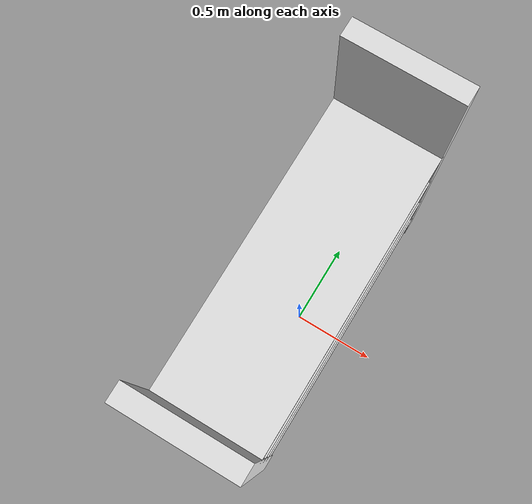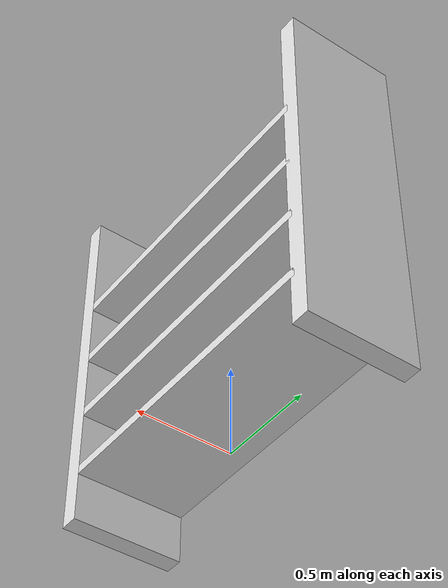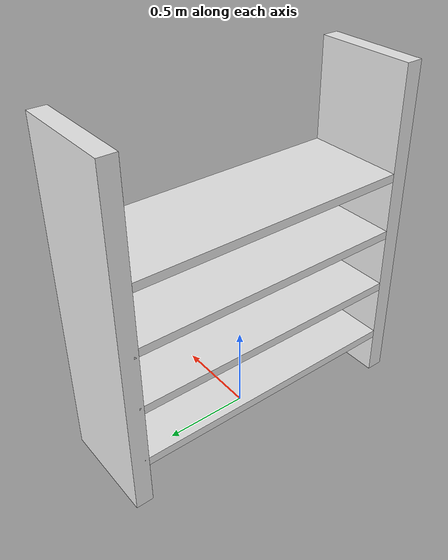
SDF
<?xml version="1.0"?>
<sdf version="1.6">
  <model name="rwc2015/bookcase/bookcase_frame">
    <link name="1_link">
      <collision name="1_col">
        <geometry>
          <box>
            <size>0.6 0.1 2.0</size>
          </box>
        </geometry>
      </collision>
      <visual name="1_vis">
        <geometry>
          <box>
            <size>0.6 0.1 2.0</size>
          </box>
        </geometry>
        <material>
          <ambient>0.9 0.9 0.9 1</ambient>
        </material>
      </visual>
      <pose>0.0 -0.87 1.0 0 0 0</pose>
    </link>
    <link name="2_link">
      <collision name="2_col">
        <geometry>
          <box>
            <size>0.6 0.1 2.0</size>
          </box>
        </geometry>
      </collision>
      <visual name="2_vis">
        <geometry>
          <box>
            <size>0.6 0.1 2.0</size>
          </box>
        </geometry>
        <material>
          <ambient>0.9 0.9 0.9 1</ambient>
        </material>
      </visual>
      <pose>0.0 0.87 1.0 0 0 0</pose>
    </link>
    <link name="3_link">
      <collision name="3_col">
        <geometry>
          <box>
            <size>0.6 1.69 0.05</size>
          </box>
        </geometry>
      </collision>
      <visual name="3_vis">
        <geometry>
          <box>
            <size>0.6 1.69 0.05</size>
          </box>
        </geometry>
        <material>
          <ambient>0.9 0.9 0.9 1</ambient>
        </material>
      </visual>
      <pose>0.0 0.0 0.285 0 0 0</pose>
    </link>
    <link name="4_link">
      <collision name="4_col">
        <geometry>
          <box>
            <size>0.6 1.69 0.05</size>
          </box>
        </geometry>
      </collision>
      <visual name="4_vis">
        <geometry>
          <box>
            <size>0.6 1.69 0.05</size>
          </box>
        </geometry>
        <material>
          <ambient>0.9 0.9 0.9 1</ambient>
        </material>
      </visual>
      <pose>0.0 0.0 0.645 0 0 0</pose>
    </link>
    <link name="5_link">
      <collision name="5_col">
        <geometry>
          <box>
            <size>0.6 1.69 0.05</size>
          </box>
        </geometry>
      </collision>
      <visual name="5_vis">
        <geometry>
          <box>
            <size>0.6 1.69 0.05</size>
          </box>
        </geometry>
        <material>
          <ambient>0.9 0.9 0.9 1</ambient>
        </material>
      </visual>
      <pose>0.0 0.0 1.005 0 0 0</pose>
    </link>
    <link name="6_link">
      <collision name="6_col">
        <geometry>
          <box>
            <size>0.6 1.69 0.05</size>
          </box>
        </geometry>
      </collision>
      <visual name="6_vis">
        <geometry>
          <box>
            <size>0.6 1.69 0.05</size>
          </box>
        </geometry>
        <material>
          <ambient>0.9 0.9 0.9 1</ambient>
        </material>
      </visual>
      <pose>0.0 0.0 1.365 0 0 0</pose>
    </link>
    <static>true</static>
  </model>
</sdf>
